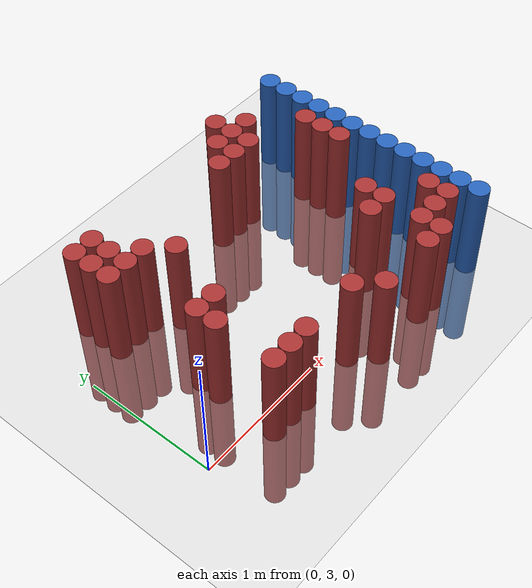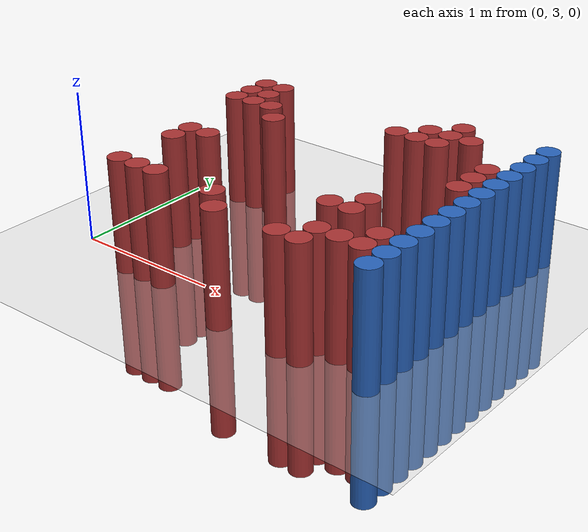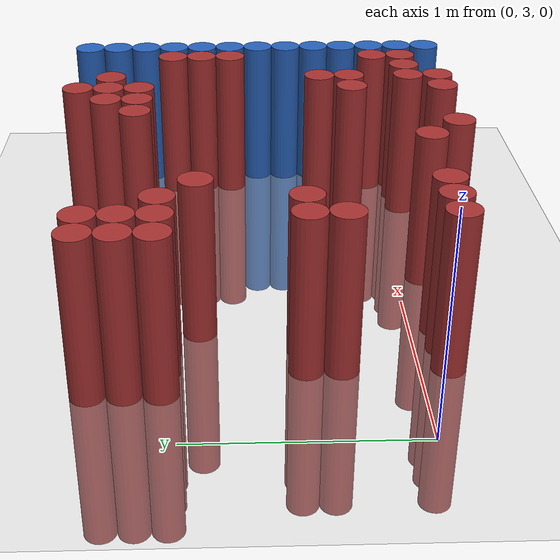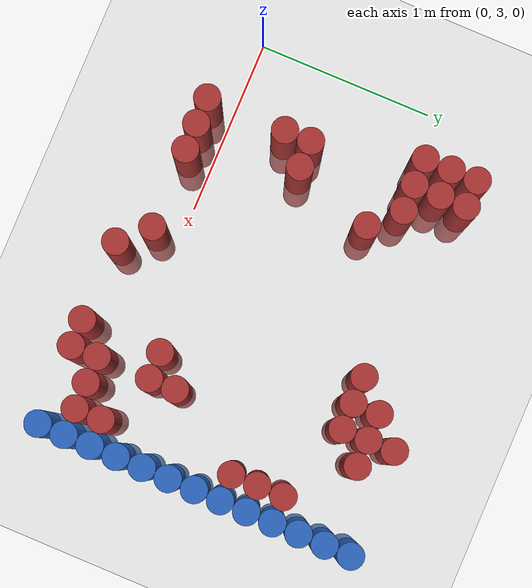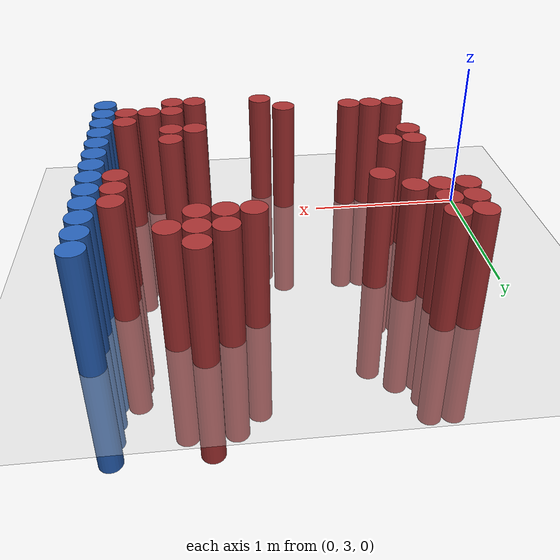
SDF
<sdf version="1.6">
 <world name="default">
  <model name="ground_plane">
   <static>1</static>
   <link name="link">
    <collision name="collision">
     <geometry><plane><normal>0 0 1</normal><size>100 100</size></plane></geometry>
     <surface><friction><ode><mu>100</mu><mu2>50</mu2></ode></friction></surface>
    </collision>
    <visual name="visual">
     <cast_shadows>0</cast_shadows>
     <geometry><plane><normal>0 0 1</normal><size>100 100</size></plane></geometry>
     <material>
      <script><uri>file://media/materials/scripts/gazebo.material</uri><name>Gazebo/Grey</name></script>
     </material>
    </visual>
   </link>
  </model>
  <model name="unit_cylinder_158">
   <static>1</static>
   <pose>0.325000 4.075000 0.000000 0.000000 0.000000 0.000000</pose>
   <link name="link">
    <inertial>
     <mass>1</mass>
     <inertia><ixx>0.145833</ixx><ixy>0</ixy><ixz>0</ixz><iyy>0.145833</iyy><iyz>0</iyz><izz>0.125</izz></inertia>
    </inertial>
    <collision name="collision">
     <geometry><cylinder><radius>0.075000</radius><length>1.5</length></cylinder></geometry>
    </collision>
    <visual name="visual">
     <geometry><cylinder><radius>0.075000</radius><length>1.5</length></cylinder></geometry>
     <material>
      <ambient>0.648000 0.192000 0.192000 1</ambient>
      <diffuse>0.648000 0.192000 0.192000 1</diffuse>
     </material>
     <material>
      <script><name>Gazebo/Grey</name><uri>file://media/materials/scripts/gazebo.material</uri></script>
     </material>
    </visual>
   </link>
  </model>
  <model name="unit_cylinder_159">
   <static>1</static>
   <pose>0.325000 4.225000 0.000000 0.000000 0.000000 0.000000</pose>
   <link name="link">
    <inertial>
     <mass>1</mass>
     <inertia><ixx>0.145833</ixx><ixy>0</ixy><ixz>0</ixz><iyy>0.145833</iyy><iyz>0</iyz><izz>0.125</izz></inertia>
    </inertial>
    <collision name="collision">
     <geometry><cylinder><radius>0.075000</radius><length>1.5</length></cylinder></geometry>
    </collision>
    <visual name="visual">
     <geometry><cylinder><radius>0.075000</radius><length>1.5</length></cylinder></geometry>
     <material>
      <ambient>0.648000 0.192000 0.192000 1</ambient>
      <diffuse>0.648000 0.192000 0.192000 1</diffuse>
     </material>
     <material>
      <script><name>Gazebo/Grey</name><uri>file://media/materials/scripts/gazebo.material</uri></script>
     </material>
    </visual>
   </link>
  </model>
  <model name="unit_cylinder_160">
   <static>1</static>
   <pose>0.325000 4.375000 0.000000 0.000000 0.000000 0.000000</pose>
   <link name="link">
    <inertial>
     <mass>1</mass>
     <inertia><ixx>0.145833</ixx><ixy>0</ixy><ixz>0</ixz><iyy>0.145833</iyy><iyz>0</iyz><izz>0.125</izz></inertia>
    </inertial>
    <collision name="collision">
     <geometry><cylinder><radius>0.075000</radius><length>1.5</length></cylinder></geometry>
    </collision>
    <visual name="visual">
     <geometry><cylinder><radius>0.075000</radius><length>1.5</length></cylinder></geometry>
     <material>
      <ambient>0.648000 0.192000 0.192000 1</ambient>
      <diffuse>0.648000 0.192000 0.192000 1</diffuse>
     </material>
     <material>
      <script><name>Gazebo/Grey</name><uri>file://media/materials/scripts/gazebo.material</uri></script>
     </material>
    </visual>
   </link>
  </model>
  <model name="unit_cylinder_161">
   <static>1</static>
   <pose>0.475000 2.875000 0.000000 0.000000 0.000000 0.000000</pose>
   <link name="link">
    <inertial>
     <mass>1</mass>
     <inertia><ixx>0.145833</ixx><ixy>0</ixy><ixz>0</ixz><iyy>0.145833</iyy><iyz>0</iyz><izz>0.125</izz></inertia>
    </inertial>
    <collision name="collision">
     <geometry><cylinder><radius>0.075000</radius><length>1.5</length></cylinder></geometry>
    </collision>
    <visual name="visual">
     <geometry><cylinder><radius>0.075000</radius><length>1.5</length></cylinder></geometry>
     <material>
      <ambient>0.648000 0.192000 0.192000 1</ambient>
      <diffuse>0.648000 0.192000 0.192000 1</diffuse>
     </material>
     <material>
      <script><name>Gazebo/Grey</name><uri>file://media/materials/scripts/gazebo.material</uri></script>
     </material>
    </visual>
   </link>
  </model>
  <model name="unit_cylinder_162">
   <static>1</static>
   <pose>0.475000 3.325000 0.000000 0.000000 0.000000 0.000000</pose>
   <link name="link">
    <inertial>
     <mass>1</mass>
     <inertia><ixx>0.145833</ixx><ixy>0</ixy><ixz>0</ixz><iyy>0.145833</iyy><iyz>0</iyz><izz>0.125</izz></inertia>
    </inertial>
    <collision name="collision">
     <geometry><cylinder><radius>0.075000</radius><length>1.5</length></cylinder></geometry>
    </collision>
    <visual name="visual">
     <geometry><cylinder><radius>0.075000</radius><length>1.5</length></cylinder></geometry>
     <material>
      <ambient>0.648000 0.192000 0.192000 1</ambient>
      <diffuse>0.648000 0.192000 0.192000 1</diffuse>
     </material>
     <material>
      <script><name>Gazebo/Grey</name><uri>file://media/materials/scripts/gazebo.material</uri></script>
     </material>
    </visual>
   </link>
  </model>
  <model name="unit_cylinder_163">
   <static>1</static>
   <pose>0.475000 3.475000 0.000000 0.000000 0.000000 0.000000</pose>
   <link name="link">
    <inertial>
     <mass>1</mass>
     <inertia><ixx>0.145833</ixx><ixy>0</ixy><ixz>0</ixz><iyy>0.145833</iyy><iyz>0</iyz><izz>0.125</izz></inertia>
    </inertial>
    <collision name="collision">
     <geometry><cylinder><radius>0.075000</radius><length>1.5</length></cylinder></geometry>
    </collision>
    <visual name="visual">
     <geometry><cylinder><radius>0.075000</radius><length>1.5</length></cylinder></geometry>
     <material>
      <ambient>0.648000 0.192000 0.192000 1</ambient>
      <diffuse>0.648000 0.192000 0.192000 1</diffuse>
     </material>
     <material>
      <script><name>Gazebo/Grey</name><uri>file://media/materials/scripts/gazebo.material</uri></script>
     </material>
    </visual>
   </link>
  </model>
  <model name="unit_cylinder_164">
   <static>1</static>
   <pose>0.475000 4.075000 0.000000 0.000000 0.000000 0.000000</pose>
   <link name="link">
    <inertial>
     <mass>1</mass>
     <inertia><ixx>0.145833</ixx><ixy>0</ixy><ixz>0</ixz><iyy>0.145833</iyy><iyz>0</iyz><izz>0.125</izz></inertia>
    </inertial>
    <collision name="collision">
     <geometry><cylinder><radius>0.075000</radius><length>1.5</length></cylinder></geometry>
    </collision>
    <visual name="visual">
     <geometry><cylinder><radius>0.075000</radius><length>1.5</length></cylinder></geometry>
     <material>
      <ambient>0.648000 0.192000 0.192000 1</ambient>
      <diffuse>0.648000 0.192000 0.192000 1</diffuse>
     </material>
     <material>
      <script><name>Gazebo/Grey</name><uri>file://media/materials/scripts/gazebo.material</uri></script>
     </material>
    </visual>
   </link>
  </model>
  <model name="unit_cylinder_165">
   <static>1</static>
   <pose>0.475000 4.225000 0.000000 0.000000 0.000000 0.000000</pose>
   <link name="link">
    <inertial>
     <mass>1</mass>
     <inertia><ixx>0.145833</ixx><ixy>0</ixy><ixz>0</ixz><iyy>0.145833</iyy><iyz>0</iyz><izz>0.125</izz></inertia>
    </inertial>
    <collision name="collision">
     <geometry><cylinder><radius>0.075000</radius><length>1.5</length></cylinder></geometry>
    </collision>
    <visual name="visual">
     <geometry><cylinder><radius>0.075000</radius><length>1.5</length></cylinder></geometry>
     <material>
      <ambient>0.648000 0.192000 0.192000 1</ambient>
      <diffuse>0.648000 0.192000 0.192000 1</diffuse>
     </material>
     <material>
      <script><name>Gazebo/Grey</name><uri>file://media/materials/scripts/gazebo.material</uri></script>
     </material>
    </visual>
   </link>
  </model>
  <model name="unit_cylinder_166">
   <static>1</static>
   <pose>0.475000 4.375000 0.000000 0.000000 0.000000 0.000000</pose>
   <link name="link">
    <inertial>
     <mass>1</mass>
     <inertia><ixx>0.145833</ixx><ixy>0</ixy><ixz>0</ixz><iyy>0.145833</iyy><iyz>0</iyz><izz>0.125</izz></inertia>
    </inertial>
    <collision name="collision">
     <geometry><cylinder><radius>0.075000</radius><length>1.5</length></cylinder></geometry>
    </collision>
    <visual name="visual">
     <geometry><cylinder><radius>0.075000</radius><length>1.5</length></cylinder></geometry>
     <material>
      <ambient>0.648000 0.192000 0.192000 1</ambient>
      <diffuse>0.648000 0.192000 0.192000 1</diffuse>
     </material>
     <material>
      <script><name>Gazebo/Grey</name><uri>file://media/materials/scripts/gazebo.material</uri></script>
     </material>
    </visual>
   </link>
  </model>
  <model name="unit_cylinder_169">
   <static>1</static>
   <pose>0.625000 2.875000 0.000000 0.000000 0.000000 0.000000</pose>
   <link name="link">
    <inertial>
     <mass>1</mass>
     <inertia><ixx>0.145833</ixx><ixy>0</ixy><ixz>0</ixz><iyy>0.145833</iyy><iyz>0</iyz><izz>0.125</izz></inertia>
    </inertial>
    <collision name="collision">
     <geometry><cylinder><radius>0.075000</radius><length>1.5</length></cylinder></geometry>
    </collision>
    <visual name="visual">
     <geometry><cylinder><radius>0.075000</radius><length>1.5</length></cylinder></geometry>
     <material>
      <ambient>0.648000 0.192000 0.192000 1</ambient>
      <diffuse>0.648000 0.192000 0.192000 1</diffuse>
     </material>
     <material>
      <script><name>Gazebo/Grey</name><uri>file://media/materials/scripts/gazebo.material</uri></script>
     </material>
    </visual>
   </link>
  </model>
  <model name="unit_cylinder_170">
   <static>1</static>
   <pose>0.625000 3.475000 0.000000 0.000000 0.000000 0.000000</pose>
   <link name="link">
    <inertial>
     <mass>1</mass>
     <inertia><ixx>0.145833</ixx><ixy>0</ixy><ixz>0</ixz><iyy>0.145833</iyy><iyz>0</iyz><izz>0.125</izz></inertia>
    </inertial>
    <collision name="collision">
     <geometry><cylinder><radius>0.075000</radius><length>1.5</length></cylinder></geometry>
    </collision>
    <visual name="visual">
     <geometry><cylinder><radius>0.075000</radius><length>1.5</length></cylinder></geometry>
     <material>
      <ambient>0.648000 0.192000 0.192000 1</ambient>
      <diffuse>0.648000 0.192000 0.192000 1</diffuse>
     </material>
     <material>
      <script><name>Gazebo/Grey</name><uri>file://media/materials/scripts/gazebo.material</uri></script>
     </material>
    </visual>
   </link>
  </model>
  <model name="unit_cylinder_171">
   <static>1</static>
   <pose>0.625000 4.075000 0.000000 0.000000 0.000000 0.000000</pose>
   <link name="link">
    <inertial>
     <mass>1</mass>
     <inertia><ixx>0.145833</ixx><ixy>0</ixy><ixz>0</ixz><iyy>0.145833</iyy><iyz>0</iyz><izz>0.125</izz></inertia>
    </inertial>
    <collision name="collision">
     <geometry><cylinder><radius>0.075000</radius><length>1.5</length></cylinder></geometry>
    </collision>
    <visual name="visual">
     <geometry><cylinder><radius>0.075000</radius><length>1.5</length></cylinder></geometry>
     <material>
      <ambient>0.648000 0.192000 0.192000 1</ambient>
      <diffuse>0.648000 0.192000 0.192000 1</diffuse>
     </material>
     <material>
      <script><name>Gazebo/Grey</name><uri>file://media/materials/scripts/gazebo.material</uri></script>
     </material>
    </visual>
   </link>
  </model>
  <model name="unit_cylinder_176">
   <static>1</static>
   <pose>0.775000 2.875000 0.000000 0.000000 0.000000 0.000000</pose>
   <link name="link">
    <inertial>
     <mass>1</mass>
     <inertia><ixx>0.145833</ixx><ixy>0</ixy><ixz>0</ixz><iyy>0.145833</iyy><iyz>0</iyz><izz>0.125</izz></inertia>
    </inertial>
    <collision name="collision">
     <geometry><cylinder><radius>0.075000</radius><length>1.5</length></cylinder></geometry>
    </collision>
    <visual name="visual">
     <geometry><cylinder><radius>0.075000</radius><length>1.5</length></cylinder></geometry>
     <material>
      <ambient>0.648000 0.192000 0.192000 1</ambient>
      <diffuse>0.648000 0.192000 0.192000 1</diffuse>
     </material>
     <material>
      <script><name>Gazebo/Grey</name><uri>file://media/materials/scripts/gazebo.material</uri></script>
     </material>
    </visual>
   </link>
  </model>
  <model name="unit_cylinder_177">
   <static>1</static>
   <pose>0.775000 3.925000 0.000000 0.000000 0.000000 0.000000</pose>
   <link name="link">
    <inertial>
     <mass>1</mass>
     <inertia><ixx>0.145833</ixx><ixy>0</ixy><ixz>0</ixz><iyy>0.145833</iyy><iyz>0</iyz><izz>0.125</izz></inertia>
    </inertial>
    <collision name="collision">
     <geometry><cylinder><radius>0.075000</radius><length>1.5</length></cylinder></geometry>
    </collision>
    <visual name="visual">
     <geometry><cylinder><radius>0.075000</radius><length>1.5</length></cylinder></geometry>
     <material>
      <ambient>0.648000 0.192000 0.192000 1</ambient>
      <diffuse>0.648000 0.192000 0.192000 1</diffuse>
     </material>
     <material>
      <script><name>Gazebo/Grey</name><uri>file://media/materials/scripts/gazebo.material</uri></script>
     </material>
    </visual>
   </link>
  </model>
  <model name="unit_cylinder_188">
   <static>1</static>
   <pose>1.225000 2.875000 0.000000 0.000000 0.000000 0.000000</pose>
   <link name="link">
    <inertial>
     <mass>1</mass>
     <inertia><ixx>0.145833</ixx><ixy>0</ixy><ixz>0</ixz><iyy>0.145833</iyy><iyz>0</iyz><izz>0.125</izz></inertia>
    </inertial>
    <collision name="collision">
     <geometry><cylinder><radius>0.075000</radius><length>1.5</length></cylinder></geometry>
    </collision>
    <visual name="visual">
     <geometry><cylinder><radius>0.075000</radius><length>1.5</length></cylinder></geometry>
     <material>
      <ambient>0.648000 0.192000 0.192000 1</ambient>
      <diffuse>0.648000 0.192000 0.192000 1</diffuse>
     </material>
     <material>
      <script><name>Gazebo/Grey</name><uri>file://media/materials/scripts/gazebo.material</uri></script>
     </material>
    </visual>
   </link>
  </model>
  <model name="unit_cylinder_196">
   <static>1</static>
   <pose>1.375000 2.725000 0.000000 0.000000 0.000000 0.000000</pose>
   <link name="link">
    <inertial>
     <mass>1</mass>
     <inertia><ixx>0.145833</ixx><ixy>0</ixy><ixz>0</ixz><iyy>0.145833</iyy><iyz>0</iyz><izz>0.125</izz></inertia>
    </inertial>
    <collision name="collision">
     <geometry><cylinder><radius>0.075000</radius><length>1.5</length></cylinder></geometry>
    </collision>
    <visual name="visual">
     <geometry><cylinder><radius>0.075000</radius><length>1.5</length></cylinder></geometry>
     <material>
      <ambient>0.648000 0.192000 0.192000 1</ambient>
      <diffuse>0.648000 0.192000 0.192000 1</diffuse>
     </material>
     <material>
      <script><name>Gazebo/Grey</name><uri>file://media/materials/scripts/gazebo.material</uri></script>
     </material>
    </visual>
   </link>
  </model>
  <model name="unit_cylinder_204">
   <static>1</static>
   <pose>1.525000 4.225000 0.000000 0.000000 0.000000 0.000000</pose>
   <link name="link">
    <inertial>
     <mass>1</mass>
     <inertia><ixx>0.145833</ixx><ixy>0</ixy><ixz>0</ixz><iyy>0.145833</iyy><iyz>0</iyz><izz>0.125</izz></inertia>
    </inertial>
    <collision name="collision">
     <geometry><cylinder><radius>0.075000</radius><length>1.5</length></cylinder></geometry>
    </collision>
    <visual name="visual">
     <geometry><cylinder><radius>0.075000</radius><length>1.5</length></cylinder></geometry>
     <material>
      <ambient>0.648000 0.192000 0.192000 1</ambient>
      <diffuse>0.648000 0.192000 0.192000 1</diffuse>
     </material>
     <material>
      <script><name>Gazebo/Grey</name><uri>file://media/materials/scripts/gazebo.material</uri></script>
     </material>
    </visual>
   </link>
  </model>
  <model name="unit_cylinder_210">
   <static>1</static>
   <pose>1.675000 4.225000 0.000000 0.000000 0.000000 0.000000</pose>
   <link name="link">
    <inertial>
     <mass>1</mass>
     <inertia><ixx>0.145833</ixx><ixy>0</ixy><ixz>0</ixz><iyy>0.145833</iyy><iyz>0</iyz><izz>0.125</izz></inertia>
    </inertial>
    <collision name="collision">
     <geometry><cylinder><radius>0.075000</radius><length>1.5</length></cylinder></geometry>
    </collision>
    <visual name="visual">
     <geometry><cylinder><radius>0.075000</radius><length>1.5</length></cylinder></geometry>
     <material>
      <ambient>0.648000 0.192000 0.192000 1</ambient>
      <diffuse>0.648000 0.192000 0.192000 1</diffuse>
     </material>
     <material>
      <script><name>Gazebo/Grey</name><uri>file://media/materials/scripts/gazebo.material</uri></script>
     </material>
    </visual>
   </link>
  </model>
  <model name="unit_cylinder_211">
   <static>1</static>
   <pose>1.675000 4.375000 0.000000 0.000000 0.000000 0.000000</pose>
   <link name="link">
    <inertial>
     <mass>1</mass>
     <inertia><ixx>0.145833</ixx><ixy>0</ixy><ixz>0</ixz><iyy>0.145833</iyy><iyz>0</iyz><izz>0.125</izz></inertia>
    </inertial>
    <collision name="collision">
     <geometry><cylinder><radius>0.075000</radius><length>1.5</length></cylinder></geometry>
    </collision>
    <visual name="visual">
     <geometry><cylinder><radius>0.075000</radius><length>1.5</length></cylinder></geometry>
     <material>
      <ambient>0.648000 0.192000 0.192000 1</ambient>
      <diffuse>0.648000 0.192000 0.192000 1</diffuse>
     </material>
     <material>
      <script><name>Gazebo/Grey</name><uri>file://media/materials/scripts/gazebo.material</uri></script>
     </material>
    </visual>
   </link>
  </model>
  <model name="unit_cylinder_219">
   <static>1</static>
   <pose>1.825000 2.725000 0.000000 0.000000 0.000000 0.000000</pose>
   <link name="link">
    <inertial>
     <mass>1</mass>
     <inertia><ixx>0.145833</ixx><ixy>0</ixy><ixz>0</ixz><iyy>0.145833</iyy><iyz>0</iyz><izz>0.125</izz></inertia>
    </inertial>
    <collision name="collision">
     <geometry><cylinder><radius>0.075000</radius><length>1.5</length></cylinder></geometry>
    </collision>
    <visual name="visual">
     <geometry><cylinder><radius>0.075000</radius><length>1.5</length></cylinder></geometry>
     <material>
      <ambient>0.648000 0.192000 0.192000 1</ambient>
      <diffuse>0.648000 0.192000 0.192000 1</diffuse>
     </material>
     <material>
      <script><name>Gazebo/Grey</name><uri>file://media/materials/scripts/gazebo.material</uri></script>
     </material>
    </visual>
   </link>
  </model>
  <model name="unit_cylinder_220">
   <static>1</static>
   <pose>1.825000 3.175000 0.000000 0.000000 0.000000 0.000000</pose>
   <link name="link">
    <inertial>
     <mass>1</mass>
     <inertia><ixx>0.145833</ixx><ixy>0</ixy><ixz>0</ixz><iyy>0.145833</iyy><iyz>0</iyz><izz>0.125</izz></inertia>
    </inertial>
    <collision name="collision">
     <geometry><cylinder><radius>0.075000</radius><length>1.5</length></cylinder></geometry>
    </collision>
    <visual name="visual">
     <geometry><cylinder><radius>0.075000</radius><length>1.5</length></cylinder></geometry>
     <material>
      <ambient>0.648000 0.192000 0.192000 1</ambient>
      <diffuse>0.648000 0.192000 0.192000 1</diffuse>
     </material>
     <material>
      <script><name>Gazebo/Grey</name><uri>file://media/materials/scripts/gazebo.material</uri></script>
     </material>
    </visual>
   </link>
  </model>
  <model name="unit_cylinder_221">
   <static>1</static>
   <pose>1.825000 4.225000 0.000000 0.000000 0.000000 0.000000</pose>
   <link name="link">
    <inertial>
     <mass>1</mass>
     <inertia><ixx>0.145833</ixx><ixy>0</ixy><ixz>0</ixz><iyy>0.145833</iyy><iyz>0</iyz><izz>0.125</izz></inertia>
    </inertial>
    <collision name="collision">
     <geometry><cylinder><radius>0.075000</radius><length>1.5</length></cylinder></geometry>
    </collision>
    <visual name="visual">
     <geometry><cylinder><radius>0.075000</radius><length>1.5</length></cylinder></geometry>
     <material>
      <ambient>0.648000 0.192000 0.192000 1</ambient>
      <diffuse>0.648000 0.192000 0.192000 1</diffuse>
     </material>
     <material>
      <script><name>Gazebo/Grey</name><uri>file://media/materials/scripts/gazebo.material</uri></script>
     </material>
    </visual>
   </link>
  </model>
  <model name="unit_cylinder_222">
   <static>1</static>
   <pose>1.825000 4.375000 0.000000 0.000000 0.000000 0.000000</pose>
   <link name="link">
    <inertial>
     <mass>1</mass>
     <inertia><ixx>0.145833</ixx><ixy>0</ixy><ixz>0</ixz><iyy>0.145833</iyy><iyz>0</iyz><izz>0.125</izz></inertia>
    </inertial>
    <collision name="collision">
     <geometry><cylinder><radius>0.075000</radius><length>1.5</length></cylinder></geometry>
    </collision>
    <visual name="visual">
     <geometry><cylinder><radius>0.075000</radius><length>1.5</length></cylinder></geometry>
     <material>
      <ambient>0.648000 0.192000 0.192000 1</ambient>
      <diffuse>0.648000 0.192000 0.192000 1</diffuse>
     </material>
     <material>
      <script><name>Gazebo/Grey</name><uri>file://media/materials/scripts/gazebo.material</uri></script>
     </material>
    </visual>
   </link>
  </model>
  <model name="unit_cylinder_223">
   <static>1</static>
   <pose>1.825000 4.525000 0.000000 0.000000 0.000000 0.000000</pose>
   <link name="link">
    <inertial>
     <mass>1</mass>
     <inertia><ixx>0.145833</ixx><ixy>0</ixy><ixz>0</ixz><iyy>0.145833</iyy><iyz>0</iyz><izz>0.125</izz></inertia>
    </inertial>
    <collision name="collision">
     <geometry><cylinder><radius>0.075000</radius><length>1.5</length></cylinder></geometry>
    </collision>
    <visual name="visual">
     <geometry><cylinder><radius>0.075000</radius><length>1.5</length></cylinder></geometry>
     <material>
      <ambient>0.648000 0.192000 0.192000 1</ambient>
      <diffuse>0.648000 0.192000 0.192000 1</diffuse>
     </material>
     <material>
      <script><name>Gazebo/Grey</name><uri>file://media/materials/scripts/gazebo.material</uri></script>
     </material>
    </visual>
   </link>
  </model>
  <model name="unit_cylinder_228">
   <static>1</static>
   <pose>1.975000 2.725000 0.000000 0.000000 0.000000 0.000000</pose>
   <link name="link">
    <inertial>
     <mass>1</mass>
     <inertia><ixx>0.145833</ixx><ixy>0</ixy><ixz>0</ixz><iyy>0.145833</iyy><iyz>0</iyz><izz>0.125</izz></inertia>
    </inertial>
    <collision name="collision">
     <geometry><cylinder><radius>0.075000</radius><length>1.5</length></cylinder></geometry>
    </collision>
    <visual name="visual">
     <geometry><cylinder><radius>0.075000</radius><length>1.5</length></cylinder></geometry>
     <material>
      <ambient>0.648000 0.192000 0.192000 1</ambient>
      <diffuse>0.648000 0.192000 0.192000 1</diffuse>
     </material>
     <material>
      <script><name>Gazebo/Grey</name><uri>file://media/materials/scripts/gazebo.material</uri></script>
     </material>
    </visual>
   </link>
  </model>
  <model name="unit_cylinder_229">
   <static>1</static>
   <pose>1.975000 2.875000 0.000000 0.000000 0.000000 0.000000</pose>
   <link name="link">
    <inertial>
     <mass>1</mass>
     <inertia><ixx>0.145833</ixx><ixy>0</ixy><ixz>0</ixz><iyy>0.145833</iyy><iyz>0</iyz><izz>0.125</izz></inertia>
    </inertial>
    <collision name="collision">
     <geometry><cylinder><radius>0.075000</radius><length>1.5</length></cylinder></geometry>
    </collision>
    <visual name="visual">
     <geometry><cylinder><radius>0.075000</radius><length>1.5</length></cylinder></geometry>
     <material>
      <ambient>0.648000 0.192000 0.192000 1</ambient>
      <diffuse>0.648000 0.192000 0.192000 1</diffuse>
     </material>
     <material>
      <script><name>Gazebo/Grey</name><uri>file://media/materials/scripts/gazebo.material</uri></script>
     </material>
    </visual>
   </link>
  </model>
  <model name="unit_cylinder_230">
   <static>1</static>
   <pose>1.975000 3.175000 0.000000 0.000000 0.000000 0.000000</pose>
   <link name="link">
    <inertial>
     <mass>1</mass>
     <inertia><ixx>0.145833</ixx><ixy>0</ixy><ixz>0</ixz><iyy>0.145833</iyy><iyz>0</iyz><izz>0.125</izz></inertia>
    </inertial>
    <collision name="collision">
     <geometry><cylinder><radius>0.075000</radius><length>1.5</length></cylinder></geometry>
    </collision>
    <visual name="visual">
     <geometry><cylinder><radius>0.075000</radius><length>1.5</length></cylinder></geometry>
     <material>
      <ambient>0.648000 0.192000 0.192000 1</ambient>
      <diffuse>0.648000 0.192000 0.192000 1</diffuse>
     </material>
     <material>
      <script><name>Gazebo/Grey</name><uri>file://media/materials/scripts/gazebo.material</uri></script>
     </material>
    </visual>
   </link>
  </model>
  <model name="unit_cylinder_231">
   <static>1</static>
   <pose>1.975000 3.325000 0.000000 0.000000 0.000000 0.000000</pose>
   <link name="link">
    <inertial>
     <mass>1</mass>
     <inertia><ixx>0.145833</ixx><ixy>0</ixy><ixz>0</ixz><iyy>0.145833</iyy><iyz>0</iyz><izz>0.125</izz></inertia>
    </inertial>
    <collision name="collision">
     <geometry><cylinder><radius>0.075000</radius><length>1.5</length></cylinder></geometry>
    </collision>
    <visual name="visual">
     <geometry><cylinder><radius>0.075000</radius><length>1.5</length></cylinder></geometry>
     <material>
      <ambient>0.648000 0.192000 0.192000 1</ambient>
      <diffuse>0.648000 0.192000 0.192000 1</diffuse>
     </material>
     <material>
      <script><name>Gazebo/Grey</name><uri>file://media/materials/scripts/gazebo.material</uri></script>
     </material>
    </visual>
   </link>
  </model>
  <model name="unit_cylinder_232">
   <static>1</static>
   <pose>1.975000 4.375000 0.000000 0.000000 0.000000 0.000000</pose>
   <link name="link">
    <inertial>
     <mass>1</mass>
     <inertia><ixx>0.145833</ixx><ixy>0</ixy><ixz>0</ixz><iyy>0.145833</iyy><iyz>0</iyz><izz>0.125</izz></inertia>
    </inertial>
    <collision name="collision">
     <geometry><cylinder><radius>0.075000</radius><length>1.5</length></cylinder></geometry>
    </collision>
    <visual name="visual">
     <geometry><cylinder><radius>0.075000</radius><length>1.5</length></cylinder></geometry>
     <material>
      <ambient>0.648000 0.192000 0.192000 1</ambient>
      <diffuse>0.648000 0.192000 0.192000 1</diffuse>
     </material>
     <material>
      <script><name>Gazebo/Grey</name><uri>file://media/materials/scripts/gazebo.material</uri></script>
     </material>
    </visual>
   </link>
  </model>
  <model name="unit_cylinder_237">
   <static>1</static>
   <pose>2.125000 2.875000 0.000000 0.000000 0.000000 0.000000</pose>
   <link name="link">
    <inertial>
     <mass>1</mass>
     <inertia><ixx>0.145833</ixx><ixy>0</ixy><ixz>0</ixz><iyy>0.145833</iyy><iyz>0</iyz><izz>0.125</izz></inertia>
    </inertial>
    <collision name="collision">
     <geometry><cylinder><radius>0.075000</radius><length>1.5</length></cylinder></geometry>
    </collision>
    <visual name="visual">
     <geometry><cylinder><radius>0.075000</radius><length>1.5</length></cylinder></geometry>
     <material>
      <ambient>0.648000 0.192000 0.192000 1</ambient>
      <diffuse>0.648000 0.192000 0.192000 1</diffuse>
     </material>
     <material>
      <script><name>Gazebo/Grey</name><uri>file://media/materials/scripts/gazebo.material</uri></script>
     </material>
    </visual>
   </link>
  </model>
  <model name="unit_cylinder_248">
   <static>1</static>
   <pose>2.275000 2.875000 0.000000 0.000000 0.000000 0.000000</pose>
   <link name="link">
    <inertial>
     <mass>1</mass>
     <inertia><ixx>0.145833</ixx><ixy>0</ixy><ixz>0</ixz><iyy>0.145833</iyy><iyz>0</iyz><izz>0.125</izz></inertia>
    </inertial>
    <collision name="collision">
     <geometry><cylinder><radius>0.075000</radius><length>1.5</length></cylinder></geometry>
    </collision>
    <visual name="visual">
     <geometry><cylinder><radius>0.075000</radius><length>1.5</length></cylinder></geometry>
     <material>
      <ambient>0.648000 0.192000 0.192000 1</ambient>
      <diffuse>0.648000 0.192000 0.192000 1</diffuse>
     </material>
     <material>
      <script><name>Gazebo/Grey</name><uri>file://media/materials/scripts/gazebo.material</uri></script>
     </material>
    </visual>
   </link>
  </model>
  <model name="unit_cylinder_249">
   <static>1</static>
   <pose>2.275000 3.025000 0.000000 0.000000 0.000000 0.000000</pose>
   <link name="link">
    <inertial>
     <mass>1</mass>
     <inertia><ixx>0.145833</ixx><ixy>0</ixy><ixz>0</ixz><iyy>0.145833</iyy><iyz>0</iyz><izz>0.125</izz></inertia>
    </inertial>
    <collision name="collision">
     <geometry><cylinder><radius>0.075000</radius><length>1.5</length></cylinder></geometry>
    </collision>
    <visual name="visual">
     <geometry><cylinder><radius>0.075000</radius><length>1.5</length></cylinder></geometry>
     <material>
      <ambient>0.648000 0.192000 0.192000 1</ambient>
      <diffuse>0.648000 0.192000 0.192000 1</diffuse>
     </material>
     <material>
      <script><name>Gazebo/Grey</name><uri>file://media/materials/scripts/gazebo.material</uri></script>
     </material>
    </visual>
   </link>
  </model>
  <model name="unit_cylinder_250">
   <static>1</static>
   <pose>2.275000 3.775000 0.000000 0.000000 0.000000 0.000000</pose>
   <link name="link">
    <inertial>
     <mass>1</mass>
     <inertia><ixx>0.145833</ixx><ixy>0</ixy><ixz>0</ixz><iyy>0.145833</iyy><iyz>0</iyz><izz>0.125</izz></inertia>
    </inertial>
    <collision name="collision">
     <geometry><cylinder><radius>0.075000</radius><length>1.5</length></cylinder></geometry>
    </collision>
    <visual name="visual">
     <geometry><cylinder><radius>0.075000</radius><length>1.5</length></cylinder></geometry>
     <material>
      <ambient>0.648000 0.192000 0.192000 1</ambient>
      <diffuse>0.648000 0.192000 0.192000 1</diffuse>
     </material>
     <material>
      <script><name>Gazebo/Grey</name><uri>file://media/materials/scripts/gazebo.material</uri></script>
     </material>
    </visual>
   </link>
  </model>
  <model name="unit_cylinder_251">
   <static>1</static>
   <pose>2.275000 3.925000 0.000000 0.000000 0.000000 0.000000</pose>
   <link name="link">
    <inertial>
     <mass>1</mass>
     <inertia><ixx>0.145833</ixx><ixy>0</ixy><ixz>0</ixz><iyy>0.145833</iyy><iyz>0</iyz><izz>0.125</izz></inertia>
    </inertial>
    <collision name="collision">
     <geometry><cylinder><radius>0.075000</radius><length>1.5</length></cylinder></geometry>
    </collision>
    <visual name="visual">
     <geometry><cylinder><radius>0.075000</radius><length>1.5</length></cylinder></geometry>
     <material>
      <ambient>0.648000 0.192000 0.192000 1</ambient>
      <diffuse>0.648000 0.192000 0.192000 1</diffuse>
     </material>
     <material>
      <script><name>Gazebo/Grey</name><uri>file://media/materials/scripts/gazebo.material</uri></script>
     </material>
    </visual>
   </link>
  </model>
  <model name="unit_cylinder_252">
   <static>1</static>
   <pose>2.275000 4.075000 0.000000 0.000000 0.000000 0.000000</pose>
   <link name="link">
    <inertial>
     <mass>1</mass>
     <inertia><ixx>0.145833</ixx><ixy>0</ixy><ixz>0</ixz><iyy>0.145833</iyy><iyz>0</iyz><izz>0.125</izz></inertia>
    </inertial>
    <collision name="collision">
     <geometry><cylinder><radius>0.075000</radius><length>1.5</length></cylinder></geometry>
    </collision>
    <visual name="visual">
     <geometry><cylinder><radius>0.075000</radius><length>1.5</length></cylinder></geometry>
     <material>
      <ambient>0.648000 0.192000 0.192000 1</ambient>
      <diffuse>0.648000 0.192000 0.192000 1</diffuse>
     </material>
     <material>
      <script><name>Gazebo/Grey</name><uri>file://media/materials/scripts/gazebo.material</uri></script>
     </material>
    </visual>
   </link>
  </model>
  <model name="unit_cylinder_270">
   <static>1</static>
   <pose>2.425000 2.725000 0.000000 0.000000 0.000000 0.000000</pose>
   <link name="link">
    <inertial>
     <mass>1</mass>
     <inertia><ixx>0.145833</ixx><ixy>0</ixy><ixz>0</ixz><iyy>0.145833</iyy><iyz>0</iyz><izz>0.125</izz></inertia>
    </inertial>
    <collision name="collision">
     <geometry><cylinder><radius>0.075000</radius><length>1.5</length></cylinder></geometry>
    </collision>
    <visual name="visual">
     <geometry><cylinder><radius>0.075000</radius><length>1.5</length></cylinder></geometry>
     <material>
      <ambient>0.152000 0.379000 0.720000 1</ambient>
      <diffuse>0.152000 0.379000 0.720000 1</diffuse>
     </material>
     <material>
      <script><name>Gazebo/Grey</name><uri>file://media/materials/scripts/gazebo.material</uri></script>
     </material>
    </visual>
   </link>
  </model>
  <model name="unit_cylinder_271">
   <static>1</static>
   <pose>2.425000 2.875000 0.000000 0.000000 0.000000 0.000000</pose>
   <link name="link">
    <inertial>
     <mass>1</mass>
     <inertia><ixx>0.145833</ixx><ixy>0</ixy><ixz>0</ixz><iyy>0.145833</iyy><iyz>0</iyz><izz>0.125</izz></inertia>
    </inertial>
    <collision name="collision">
     <geometry><cylinder><radius>0.075000</radius><length>1.5</length></cylinder></geometry>
    </collision>
    <visual name="visual">
     <geometry><cylinder><radius>0.075000</radius><length>1.5</length></cylinder></geometry>
     <material>
      <ambient>0.152000 0.379000 0.720000 1</ambient>
      <diffuse>0.152000 0.379000 0.720000 1</diffuse>
     </material>
     <material>
      <script><name>Gazebo/Grey</name><uri>file://media/materials/scripts/gazebo.material</uri></script>
     </material>
    </visual>
   </link>
  </model>
  <model name="unit_cylinder_272">
   <static>1</static>
   <pose>2.425000 3.025000 0.000000 0.000000 0.000000 0.000000</pose>
   <link name="link">
    <inertial>
     <mass>1</mass>
     <inertia><ixx>0.145833</ixx><ixy>0</ixy><ixz>0</ixz><iyy>0.145833</iyy><iyz>0</iyz><izz>0.125</izz></inertia>
    </inertial>
    <collision name="collision">
     <geometry><cylinder><radius>0.075000</radius><length>1.5</length></cylinder></geometry>
    </collision>
    <visual name="visual">
     <geometry><cylinder><radius>0.075000</radius><length>1.5</length></cylinder></geometry>
     <material>
      <ambient>0.152000 0.379000 0.720000 1</ambient>
      <diffuse>0.152000 0.379000 0.720000 1</diffuse>
     </material>
     <material>
      <script><name>Gazebo/Grey</name><uri>file://media/materials/scripts/gazebo.material</uri></script>
     </material>
    </visual>
   </link>
  </model>
  <model name="unit_cylinder_273">
   <static>1</static>
   <pose>2.425000 3.175000 0.000000 0.000000 0.000000 0.000000</pose>
   <link name="link">
    <inertial>
     <mass>1</mass>
     <inertia><ixx>0.145833</ixx><ixy>0</ixy><ixz>0</ixz><iyy>0.145833</iyy><iyz>0</iyz><izz>0.125</izz></inertia>
    </inertial>
    <collision name="collision">
     <geometry><cylinder><radius>0.075000</radius><length>1.5</length></cylinder></geometry>
    </collision>
    <visual name="visual">
     <geometry><cylinder><radius>0.075000</radius><length>1.5</length></cylinder></geometry>
     <material>
      <ambient>0.152000 0.379000 0.720000 1</ambient>
      <diffuse>0.152000 0.379000 0.720000 1</diffuse>
     </material>
     <material>
      <script><name>Gazebo/Grey</name><uri>file://media/materials/scripts/gazebo.material</uri></script>
     </material>
    </visual>
   </link>
  </model>
  <model name="unit_cylinder_274">
   <static>1</static>
   <pose>2.425000 3.325000 0.000000 0.000000 0.000000 0.000000</pose>
   <link name="link">
    <inertial>
     <mass>1</mass>
     <inertia><ixx>0.145833</ixx><ixy>0</ixy><ixz>0</ixz><iyy>0.145833</iyy><iyz>0</iyz><izz>0.125</izz></inertia>
    </inertial>
    <collision name="collision">
     <geometry><cylinder><radius>0.075000</radius><length>1.5</length></cylinder></geometry>
    </collision>
    <visual name="visual">
     <geometry><cylinder><radius>0.075000</radius><length>1.5</length></cylinder></geometry>
     <material>
      <ambient>0.152000 0.379000 0.720000 1</ambient>
      <diffuse>0.152000 0.379000 0.720000 1</diffuse>
     </material>
     <material>
      <script><name>Gazebo/Grey</name><uri>file://media/materials/scripts/gazebo.material</uri></script>
     </material>
    </visual>
   </link>
  </model>
  <model name="unit_cylinder_275">
   <static>1</static>
   <pose>2.425000 3.475000 0.000000 0.000000 0.000000 0.000000</pose>
   <link name="link">
    <inertial>
     <mass>1</mass>
     <inertia><ixx>0.145833</ixx><ixy>0</ixy><ixz>0</ixz><iyy>0.145833</iyy><iyz>0</iyz><izz>0.125</izz></inertia>
    </inertial>
    <collision name="collision">
     <geometry><cylinder><radius>0.075000</radius><length>1.5</length></cylinder></geometry>
    </collision>
    <visual name="visual">
     <geometry><cylinder><radius>0.075000</radius><length>1.5</length></cylinder></geometry>
     <material>
      <ambient>0.152000 0.379000 0.720000 1</ambient>
      <diffuse>0.152000 0.379000 0.720000 1</diffuse>
     </material>
     <material>
      <script><name>Gazebo/Grey</name><uri>file://media/materials/scripts/gazebo.material</uri></script>
     </material>
    </visual>
   </link>
  </model>
  <model name="unit_cylinder_276">
   <static>1</static>
   <pose>2.425000 3.625000 0.000000 0.000000 0.000000 0.000000</pose>
   <link name="link">
    <inertial>
     <mass>1</mass>
     <inertia><ixx>0.145833</ixx><ixy>0</ixy><ixz>0</ixz><iyy>0.145833</iyy><iyz>0</iyz><izz>0.125</izz></inertia>
    </inertial>
    <collision name="collision">
     <geometry><cylinder><radius>0.075000</radius><length>1.5</length></cylinder></geometry>
    </collision>
    <visual name="visual">
     <geometry><cylinder><radius>0.075000</radius><length>1.5</length></cylinder></geometry>
     <material>
      <ambient>0.152000 0.379000 0.720000 1</ambient>
      <diffuse>0.152000 0.379000 0.720000 1</diffuse>
     </material>
     <material>
      <script><name>Gazebo/Grey</name><uri>file://media/materials/scripts/gazebo.material</uri></script>
     </material>
    </visual>
   </link>
  </model>
  <model name="unit_cylinder_277">
   <static>1</static>
   <pose>2.425000 3.775000 0.000000 0.000000 0.000000 0.000000</pose>
   <link name="link">
    <inertial>
     <mass>1</mass>
     <inertia><ixx>0.145833</ixx><ixy>0</ixy><ixz>0</ixz><iyy>0.145833</iyy><iyz>0</iyz><izz>0.125</izz></inertia>
    </inertial>
    <collision name="collision">
     <geometry><cylinder><radius>0.075000</radius><length>1.5</length></cylinder></geometry>
    </collision>
    <visual name="visual">
     <geometry><cylinder><radius>0.075000</radius><length>1.5</length></cylinder></geometry>
     <material>
      <ambient>0.152000 0.379000 0.720000 1</ambient>
      <diffuse>0.152000 0.379000 0.720000 1</diffuse>
     </material>
     <material>
      <script><name>Gazebo/Grey</name><uri>file://media/materials/scripts/gazebo.material</uri></script>
     </material>
    </visual>
   </link>
  </model>
  <model name="unit_cylinder_278">
   <static>1</static>
   <pose>2.425000 3.925000 0.000000 0.000000 0.000000 0.000000</pose>
   <link name="link">
    <inertial>
     <mass>1</mass>
     <inertia><ixx>0.145833</ixx><ixy>0</ixy><ixz>0</ixz><iyy>0.145833</iyy><iyz>0</iyz><izz>0.125</izz></inertia>
    </inertial>
    <collision name="collision">
     <geometry><cylinder><radius>0.075000</radius><length>1.5</length></cylinder></geometry>
    </collision>
    <visual name="visual">
     <geometry><cylinder><radius>0.075000</radius><length>1.5</length></cylinder></geometry>
     <material>
      <ambient>0.152000 0.379000 0.720000 1</ambient>
      <diffuse>0.152000 0.379000 0.720000 1</diffuse>
     </material>
     <material>
      <script><name>Gazebo/Grey</name><uri>file://media/materials/scripts/gazebo.material</uri></script>
     </material>
    </visual>
   </link>
  </model>
  <model name="unit_cylinder_279">
   <static>1</static>
   <pose>2.425000 4.075000 0.000000 0.000000 0.000000 0.000000</pose>
   <link name="link">
    <inertial>
     <mass>1</mass>
     <inertia><ixx>0.145833</ixx><ixy>0</ixy><ixz>0</ixz><iyy>0.145833</iyy><iyz>0</iyz><izz>0.125</izz></inertia>
    </inertial>
    <collision name="collision">
     <geometry><cylinder><radius>0.075000</radius><length>1.5</length></cylinder></geometry>
    </collision>
    <visual name="visual">
     <geometry><cylinder><radius>0.075000</radius><length>1.5</length></cylinder></geometry>
     <material>
      <ambient>0.152000 0.379000 0.720000 1</ambient>
      <diffuse>0.152000 0.379000 0.720000 1</diffuse>
     </material>
     <material>
      <script><name>Gazebo/Grey</name><uri>file://media/materials/scripts/gazebo.material</uri></script>
     </material>
    </visual>
   </link>
  </model>
  <model name="unit_cylinder_280">
   <static>1</static>
   <pose>2.425000 4.225000 0.000000 0.000000 0.000000 0.000000</pose>
   <link name="link">
    <inertial>
     <mass>1</mass>
     <inertia><ixx>0.145833</ixx><ixy>0</ixy><ixz>0</ixz><iyy>0.145833</iyy><iyz>0</iyz><izz>0.125</izz></inertia>
    </inertial>
    <collision name="collision">
     <geometry><cylinder><radius>0.075000</radius><length>1.5</length></cylinder></geometry>
    </collision>
    <visual name="visual">
     <geometry><cylinder><radius>0.075000</radius><length>1.5</length></cylinder></geometry>
     <material>
      <ambient>0.152000 0.379000 0.720000 1</ambient>
      <diffuse>0.152000 0.379000 0.720000 1</diffuse>
     </material>
     <material>
      <script><name>Gazebo/Grey</name><uri>file://media/materials/scripts/gazebo.material</uri></script>
     </material>
    </visual>
   </link>
  </model>
  <model name="unit_cylinder_281">
   <static>1</static>
   <pose>2.425000 4.375000 0.000000 0.000000 0.000000 0.000000</pose>
   <link name="link">
    <inertial>
     <mass>1</mass>
     <inertia><ixx>0.145833</ixx><ixy>0</ixy><ixz>0</ixz><iyy>0.145833</iyy><iyz>0</iyz><izz>0.125</izz></inertia>
    </inertial>
    <collision name="collision">
     <geometry><cylinder><radius>0.075000</radius><length>1.5</length></cylinder></geometry>
    </collision>
    <visual name="visual">
     <geometry><cylinder><radius>0.075000</radius><length>1.5</length></cylinder></geometry>
     <material>
      <ambient>0.152000 0.379000 0.720000 1</ambient>
      <diffuse>0.152000 0.379000 0.720000 1</diffuse>
     </material>
     <material>
      <script><name>Gazebo/Grey</name><uri>file://media/materials/scripts/gazebo.material</uri></script>
     </material>
    </visual>
   </link>
  </model>
  <model name="unit_cylinder_282">
   <static>1</static>
   <pose>2.425000 4.525000 0.000000 0.000000 0.000000 0.000000</pose>
   <link name="link">
    <inertial>
     <mass>1</mass>
     <inertia><ixx>0.145833</ixx><ixy>0</ixy><ixz>0</ixz><iyy>0.145833</iyy><iyz>0</iyz><izz>0.125</izz></inertia>
    </inertial>
    <collision name="collision">
     <geometry><cylinder><radius>0.075000</radius><length>1.5</length></cylinder></geometry>
    </collision>
    <visual name="visual">
     <geometry><cylinder><radius>0.075000</radius><length>1.5</length></cylinder></geometry>
     <material>
      <ambient>0.152000 0.379000 0.720000 1</ambient>
      <diffuse>0.152000 0.379000 0.720000 1</diffuse>
     </material>
     <material>
      <script><name>Gazebo/Grey</name><uri>file://media/materials/scripts/gazebo.material</uri></script>
     </material>
    </visual>
   </link>
  </model>
 </world>
</sdf>
